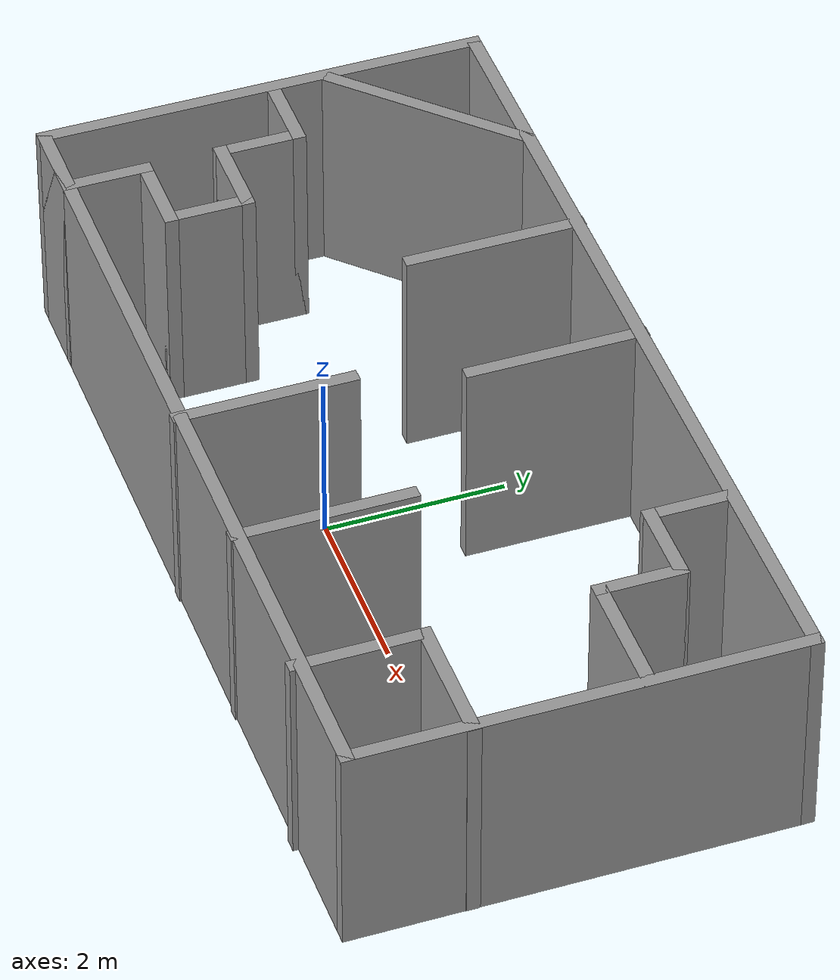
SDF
<?xml version='1.0'?>
<sdf version='1.6'>
  <model name='ambienteSimples'>
    <pose frame=''>0.687616 0.713026 0 0 -0 0</pose>
    <link name='Wall_1'>
      <collision name='Wall_1_Collision'>
        <geometry>
          <box>
            <size>5 0.15 2.5</size>
          </box>
        </geometry>
        <pose frame=''>0 0 1.25 0 -0 0</pose>
      </collision>
      <visual name='Wall_1_Visual'>
        <pose frame=''>0 0 1.25 0 -0 0</pose>
        <geometry>
          <box>
            <size>5 0.15 2.5</size>
          </box>
        </geometry>
        <material>
          <script>
            <uri>file://media/materials/scripts/gazebo.material</uri>
            <name>Gazebo/Grey</name>
          </script>
          <ambient>1 1 1 1</ambient>
        </material>
        <meta>
          <layer>0</layer>
        </meta>
      </visual>
      <pose frame=''>-4.92783 0.025968 0 0 0 -1.5708</pose>
    </link>
    <link name='Wall_11'>
      <collision name='Wall_11_Collision'>
        <geometry>
          <box>
            <size>2.5 0.15 2.5</size>
          </box>
        </geometry>
        <pose frame=''>0 0 1.25 0 -0 0</pose>
      </collision>
      <visual name='Wall_11_Visual'>
        <pose frame=''>0 0 1.25 0 -0 0</pose>
        <geometry>
          <box>
            <size>2.5 0.15 2.5</size>
          </box>
        </geometry>
        <material>
          <script>
            <uri>file://media/materials/scripts/gazebo.material</uri>
            <name>Gazebo/Grey</name>
          </script>
          <ambient>1 1 1 1</ambient>
        </material>
        <meta>
          <layer>0</layer>
        </meta>
      </visual>
      <pose frame=''>-4.05675 1.59228 0 0 -0 0.785398</pose>
    </link>
    <link name='Wall_18'>
      <collision name='Wall_18_Collision'>
        <geometry>
          <box>
            <size>1.5 0.15 2.5</size>
          </box>
        </geometry>
        <pose frame=''>0 0 1.25 0 -0 0</pose>
      </collision>
      <visual name='Wall_18_Visual'>
        <pose frame=''>0 0 1.25 0 -0 0</pose>
        <geometry>
          <box>
            <size>1.5 0.15 2.5</size>
          </box>
        </geometry>
        <material>
          <script>
            <uri>file://media/materials/scripts/gazebo.material</uri>
            <name>Gazebo/Grey</name>
          </script>
          <ambient>1 1 1 1</ambient>
        </material>
        <meta>
          <layer>0</layer>
        </meta>
      </visual>
      <pose frame=''>4.25282 -1.10913 0 0 -0 3.14159</pose>
    </link>
    <link name='Wall_19'>
      <collision name='Wall_19_Collision'>
        <geometry>
          <box>
            <size>1.5 0.15 2.5</size>
          </box>
        </geometry>
        <pose frame=''>0 0 1.25 0 -0 0</pose>
      </collision>
      <visual name='Wall_19_Visual'>
        <pose frame=''>0 0 1.25 0 -0 0</pose>
        <geometry>
          <box>
            <size>1.5 0.15 2.5</size>
          </box>
        </geometry>
        <material>
          <script>
            <uri>file://media/materials/scripts/gazebo.material</uri>
            <name>Gazebo/Grey</name>
          </script>
          <ambient>1 1 1 1</ambient>
        </material>
        <meta>
          <layer>0</layer>
        </meta>
      </visual>
      <pose frame=''>3.57782 -1.78413 0 0 0 -1.5708</pose>
    </link>
    <link name='Wall_3'>
      <collision name='Wall_3_Collision'>
        <geometry>
          <box>
            <size>10 0.15 2.5</size>
          </box>
        </geometry>
        <pose frame=''>0 0 1.25 0 -0 0</pose>
      </collision>
      <visual name='Wall_3_Visual'>
        <pose frame=''>0 0 1.25 0 -0 0</pose>
        <geometry>
          <box>
            <size>10 0.15 2.5</size>
          </box>
        </geometry>
        <material>
          <script>
            <uri>file://media/materials/scripts/gazebo.material</uri>
            <name>Gazebo/Grey</name>
          </script>
          <ambient>1 1 1 1</ambient>
        </material>
        <meta>
          <layer>0</layer>
        </meta>
      </visual>
      <pose frame=''>-0.002825 -2.39903 0 0 -0 0</pose>
    </link>
    <link name='Wall_31'>
      <collision name='Wall_31_Collision'>
        <geometry>
          <box>
            <size>1.5 0.15 2.5</size>
          </box>
        </geometry>
        <pose frame=''>0 0 1.25 0 -0 0</pose>
      </collision>
      <visual name='Wall_31_Visual'>
        <pose frame=''>0 0 1.25 0 -0 0</pose>
        <geometry>
          <box>
            <size>1.5 0.15 2.5</size>
          </box>
        </geometry>
        <material>
          <script>
            <uri>file://media/materials/scripts/gazebo.material</uri>
            <name>Gazebo/Grey</name>
          </script>
          <ambient>1 1 1 1</ambient>
        </material>
        <meta>
          <layer>0</layer>
        </meta>
      </visual>
      <pose frame=''>4.23773 0.718946 0 0 -0 3.14159</pose>
    </link>
    <link name='Wall_32'>
      <collision name='Wall_32_Collision'>
        <geometry>
          <box>
            <size>1 0.15 2.5</size>
          </box>
        </geometry>
        <pose frame=''>0 0 1.25 0 -0 0</pose>
      </collision>
      <visual name='Wall_32_Visual'>
        <pose frame=''>0 0 1.25 0 -0 0</pose>
        <geometry>
          <box>
            <size>1 0.15 2.5</size>
          </box>
        </geometry>
        <material>
          <script>
            <uri>file://media/materials/scripts/gazebo.material</uri>
            <name>Gazebo/Grey</name>
          </script>
          <ambient>1 1 1 1</ambient>
        </material>
        <meta>
          <layer>0</layer>
        </meta>
      </visual>
      <pose frame=''>3.56273 1.14395 0 0 -0 1.5708</pose>
    </link>
    <link name='Wall_33'>
      <collision name='Wall_33_Collision'>
        <geometry>
          <box>
            <size>1 0.15 2.5</size>
          </box>
        </geometry>
        <pose frame=''>0 0 1.25 0 -0 0</pose>
      </collision>
      <visual name='Wall_33_Visual'>
        <pose frame=''>0 0 1.25 0 -0 0</pose>
        <geometry>
          <box>
            <size>1 0.15 2.5</size>
          </box>
        </geometry>
        <material>
          <script>
            <uri>file://media/materials/scripts/gazebo.material</uri>
            <name>Gazebo/Grey</name>
          </script>
          <ambient>1 1 1 1</ambient>
        </material>
        <meta>
          <layer>0</layer>
        </meta>
      </visual>
      <pose frame=''>3.13773 1.56895 0 0 -0 3.14159</pose>
    </link>
    <link name='Wall_34'>
      <collision name='Wall_34_Collision'>
        <geometry>
          <box>
            <size>1 0.15 2.5</size>
          </box>
        </geometry>
        <pose frame=''>0 0 1.25 0 -0 0</pose>
      </collision>
      <visual name='Wall_34_Visual'>
        <pose frame=''>0 0 1.25 0 -0 0</pose>
        <geometry>
          <box>
            <size>1 0.15 2.5</size>
          </box>
        </geometry>
        <material>
          <script>
            <uri>file://media/materials/scripts/gazebo.material</uri>
            <name>Gazebo/Grey</name>
          </script>
          <ambient>1 1 1 1</ambient>
        </material>
        <meta>
          <layer>0</layer>
        </meta>
      </visual>
      <pose frame=''>2.71273 1.99395 0 0 -0 1.5708</pose>
    </link>
    <link name='Wall_36'>
      <collision name='Wall_36_Collision'>
        <geometry>
          <box>
            <size>1 0.15 2.5</size>
          </box>
        </geometry>
        <pose frame=''>0 0 1.25 0 -0 0</pose>
      </collision>
      <visual name='Wall_36_Visual'>
        <pose frame=''>0 0 1.25 0 -0 0</pose>
        <geometry>
          <box>
            <size>1 0.15 2.5</size>
          </box>
        </geometry>
        <material>
          <script>
            <uri>file://media/materials/scripts/gazebo.material</uri>
            <name>Gazebo/Grey</name>
          </script>
          <ambient>1 1 1 1</ambient>
        </material>
        <meta>
          <layer>0</layer>
        </meta>
      </visual>
      <pose frame=''>-4.50282 -2.39903 0 0 -0 0</pose>
    </link>
    <link name='Wall_37'>
      <collision name='Wall_37_Collision'>
        <geometry>
          <box>
            <size>1 0.15 2.5</size>
          </box>
        </geometry>
        <pose frame=''>0 0 1.25 0 -0 0</pose>
      </collision>
      <visual name='Wall_37_Visual'>
        <pose frame=''>0 0 1.25 0 -0 0</pose>
        <geometry>
          <box>
            <size>1 0.15 2.5</size>
          </box>
        </geometry>
        <material>
          <script>
            <uri>file://media/materials/scripts/gazebo.material</uri>
            <name>Gazebo/Grey</name>
          </script>
          <ambient>1 1 1 1</ambient>
        </material>
        <meta>
          <layer>0</layer>
        </meta>
      </visual>
      <pose frame=''>-4.07782 -1.97403 0 0 -0 1.5708</pose>
    </link>
    <link name='Wall_38'>
      <collision name='Wall_38_Collision'>
        <geometry>
          <box>
            <size>1 0.15 2.5</size>
          </box>
        </geometry>
        <pose frame=''>0 0 1.25 0 -0 0</pose>
      </collision>
      <visual name='Wall_38_Visual'>
        <pose frame=''>0 0 1.25 0 -0 0</pose>
        <geometry>
          <box>
            <size>1 0.15 2.5</size>
          </box>
        </geometry>
        <material>
          <script>
            <uri>file://media/materials/scripts/gazebo.material</uri>
            <name>Gazebo/Grey</name>
          </script>
          <ambient>1 1 1 1</ambient>
        </material>
        <meta>
          <layer>0</layer>
        </meta>
      </visual>
      <pose frame=''>-3.65282 -1.54903 0 0 -0 0</pose>
    </link>
    <link name='Wall_39'>
      <collision name='Wall_39_Collision'>
        <geometry>
          <box>
            <size>1 0.15 2.5</size>
          </box>
        </geometry>
        <pose frame=''>0 0 1.25 0 -0 0</pose>
      </collision>
      <visual name='Wall_39_Visual'>
        <pose frame=''>0 0 1.25 0 -0 0</pose>
        <geometry>
          <box>
            <size>1 0.15 2.5</size>
          </box>
        </geometry>
        <material>
          <script>
            <uri>file://media/materials/scripts/gazebo.material</uri>
            <name>Gazebo/Grey</name>
          </script>
          <ambient>1 1 1 1</ambient>
        </material>
        <meta>
          <layer>0</layer>
        </meta>
      </visual>
      <pose frame=''>-3.22783 -1.12403 0 0 -0 1.5708</pose>
    </link>
    <link name='Wall_4'>
      <collision name='Wall_4_Collision'>
        <geometry>
          <box>
            <size>5 0.15 2.5</size>
          </box>
        </geometry>
        <pose frame=''>0 0 1.25 0 -0 0</pose>
      </collision>
      <visual name='Wall_4_Visual'>
        <pose frame=''>0 0 1.25 0 -0 0</pose>
        <geometry>
          <box>
            <size>5 0.15 2.5</size>
          </box>
        </geometry>
        <material>
          <script>
            <uri>file://media/materials/scripts/gazebo.material</uri>
            <name>Gazebo/Grey</name>
          </script>
          <ambient>1 1 1 1</ambient>
        </material>
        <meta>
          <layer>0</layer>
        </meta>
      </visual>
      <pose frame=''>4.92218 0.025968 0 0 -0 1.5708</pose>
    </link>
    <link name='Wall_40'>
      <collision name='Wall_40_Collision'>
        <geometry>
          <box>
            <size>1 0.15 2.5</size>
          </box>
        </geometry>
        <pose frame=''>0 0 1.25 0 -0 0</pose>
      </collision>
      <visual name='Wall_40_Visual'>
        <pose frame=''>0 0 1.25 0 -0 0</pose>
        <geometry>
          <box>
            <size>1 0.15 2.5</size>
          </box>
        </geometry>
        <material>
          <script>
            <uri>file://media/materials/scripts/gazebo.material</uri>
            <name>Gazebo/Grey</name>
          </script>
          <ambient>1 1 1 1</ambient>
        </material>
        <meta>
          <layer>0</layer>
        </meta>
      </visual>
      <pose frame=''>-3.65282 -0.699032 0 0 -0 3.14159</pose>
    </link>
    <link name='Wall_41'>
      <collision name='Wall_41_Collision'>
        <geometry>
          <box>
            <size>1 0.15 2.5</size>
          </box>
        </geometry>
        <pose frame=''>0 0 1.25 0 -0 0</pose>
      </collision>
      <visual name='Wall_41_Visual'>
        <pose frame=''>0 0 1.25 0 -0 0</pose>
        <geometry>
          <box>
            <size>1 0.15 2.5</size>
          </box>
        </geometry>
        <material>
          <script>
            <uri>file://media/materials/scripts/gazebo.material</uri>
            <name>Gazebo/Grey</name>
          </script>
          <ambient>1 1 1 1</ambient>
        </material>
        <meta>
          <layer>0</layer>
        </meta>
      </visual>
      <pose frame=''>-4.07782 -0.274032 0 0 -0 1.5708</pose>
    </link>
    <link name='Wall_42'>
      <collision name='Wall_42_Collision'>
        <geometry>
          <box>
            <size>1 0.15 2.5</size>
          </box>
        </geometry>
        <pose frame=''>0 0 1.25 0 -0 0</pose>
      </collision>
      <visual name='Wall_42_Visual'>
        <pose frame=''>0 0 1.25 0 -0 0</pose>
        <geometry>
          <box>
            <size>1 0.15 2.5</size>
          </box>
        </geometry>
        <material>
          <script>
            <uri>file://media/materials/scripts/gazebo.material</uri>
            <name>Gazebo/Grey</name>
          </script>
          <ambient>1 1 1 1</ambient>
        </material>
        <meta>
          <layer>0</layer>
        </meta>
      </visual>
      <pose frame=''>-4.50282 0.150968 0 0 -0 3.14159</pose>
    </link>
    <link name='Wall_44'>
      <collision name='Wall_44_Collision'>
        <geometry>
          <box>
            <size>2 0.15 2.5</size>
          </box>
        </geometry>
        <pose frame=''>0 0 1.25 0 -0 0</pose>
      </collision>
      <visual name='Wall_44_Visual'>
        <pose frame=''>0 0 1.25 0 -0 0</pose>
        <geometry>
          <box>
            <size>2 0.15 2.5</size>
          </box>
        </geometry>
        <material>
          <script>
            <uri>file://media/materials/scripts/gazebo.material</uri>
            <name>Gazebo/Grey</name>
          </script>
          <ambient>1 1 1 1</ambient>
        </material>
        <meta>
          <layer>0</layer>
        </meta>
      </visual>
      <pose frame=''>1.62769 -1.49453 0 0 -0 1.5708</pose>
    </link>
    <link name='Wall_46'>
      <collision name='Wall_46_Collision'>
        <geometry>
          <box>
            <size>2 0.15 2.5</size>
          </box>
        </geometry>
        <pose frame=''>0 0 1.25 0 -0 0</pose>
      </collision>
      <visual name='Wall_46_Visual'>
        <pose frame=''>0 0 1.25 0 -0 0</pose>
        <geometry>
          <box>
            <size>2 0.15 2.5</size>
          </box>
        </geometry>
        <material>
          <script>
            <uri>file://media/materials/scripts/gazebo.material</uri>
            <name>Gazebo/Grey</name>
          </script>
          <ambient>1 1 1 1</ambient>
        </material>
        <meta>
          <layer>0</layer>
        </meta>
      </visual>
      <pose frame=''>-0.222309 -1.49453 0 0 0 -1.5708</pose>
    </link>
    <link name='Wall_48'>
      <collision name='Wall_48_Collision'>
        <geometry>
          <box>
            <size>2 0.15 2.5</size>
          </box>
        </geometry>
        <pose frame=''>0 0 1.25 0 -0 0</pose>
      </collision>
      <visual name='Wall_48_Visual'>
        <pose frame=''>0 0 1.25 0 -0 0</pose>
        <geometry>
          <box>
            <size>2 0.15 2.5</size>
          </box>
        </geometry>
        <material>
          <script>
            <uri>file://media/materials/scripts/gazebo.material</uri>
            <name>Gazebo/Grey</name>
          </script>
          <ambient>1 1 1 1</ambient>
        </material>
        <meta>
          <layer>0</layer>
        </meta>
      </visual>
      <pose frame=''>-1.7345 1.53413 0 0 0 -1.5708</pose>
    </link>
    <link name='Wall_5'>
      <collision name='Wall_5_Collision'>
        <geometry>
          <box>
            <size>10 0.15 2.5</size>
          </box>
        </geometry>
        <pose frame=''>0 0 1.25 0 -0 0</pose>
      </collision>
      <visual name='Wall_5_Visual'>
        <pose frame=''>0 0 1.25 0 -0 0</pose>
        <geometry>
          <box>
            <size>10 0.15 2.5</size>
          </box>
        </geometry>
        <material>
          <script>
            <uri>file://media/materials/scripts/gazebo.material</uri>
            <name>Gazebo/Grey</name>
          </script>
          <ambient>1 1 1 1</ambient>
        </material>
        <meta>
          <layer>0</layer>
        </meta>
      </visual>
      <pose frame=''>-0.002825 2.45097 0 0 -0 3.14159</pose>
    </link>
    <link name='Wall_50'>
      <collision name='Wall_50_Collision'>
        <geometry>
          <box>
            <size>2 0.15 2.5</size>
          </box>
        </geometry>
        <pose frame=''>0 0 1.25 0 -0 0</pose>
      </collision>
      <visual name='Wall_50_Visual'>
        <pose frame=''>0 0 1.25 0 -0 0</pose>
        <geometry>
          <box>
            <size>2 0.15 2.5</size>
          </box>
        </geometry>
        <material>
          <script>
            <uri>file://media/materials/scripts/gazebo.material</uri>
            <name>Gazebo/Grey</name>
          </script>
          <ambient>1 1 1 1</ambient>
        </material>
        <meta>
          <layer>0</layer>
        </meta>
      </visual>
      <pose frame=''>0.115503 1.53413 0 0 -0 1.5708</pose>
    </link>
    <static>1</static>
  </model>
</sdf>
